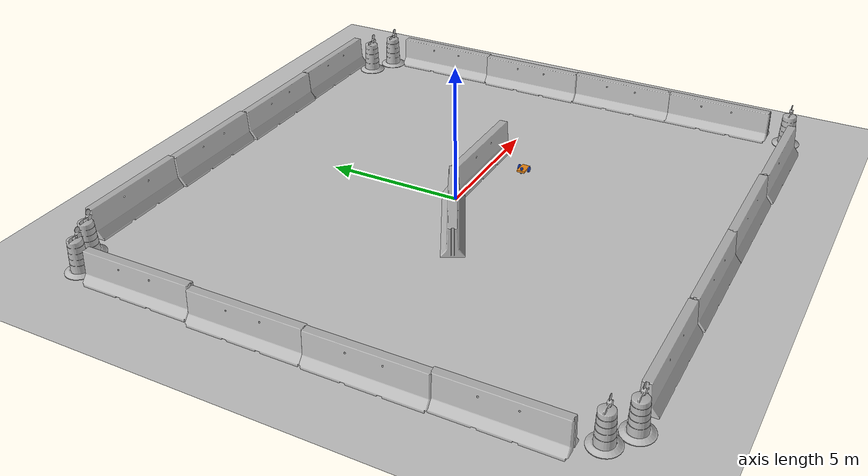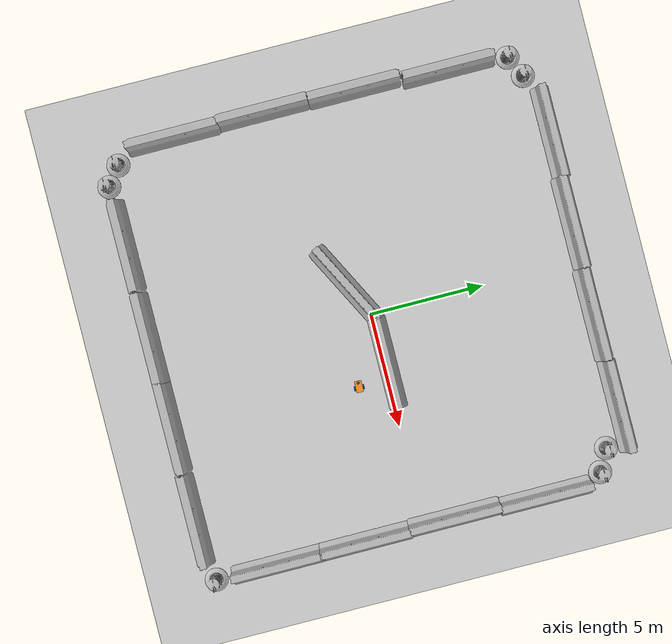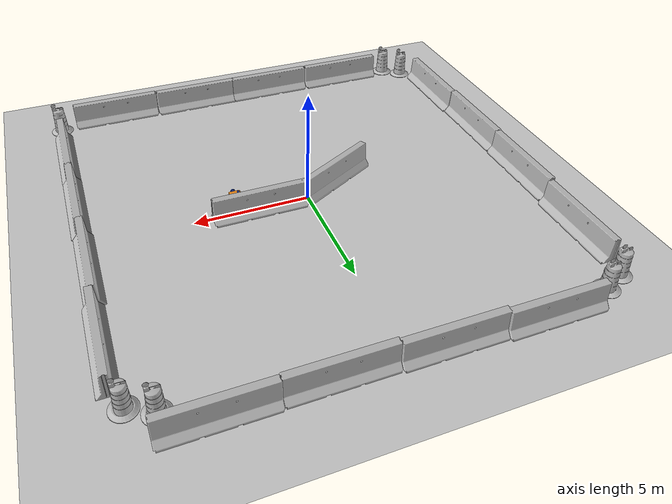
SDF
<sdf version="1.6">
 <world name="default">
  <light name="sun" type="directional">
   <pose>0 0 10 0 -0 0</pose>
   <diffuse>0.8 0.8 0.8 1</diffuse>
   <specular>0.2 0.2 0.2 1</specular>
   <attenuation>
    <range>1000</range>
    <constant>0.9</constant>
    <linear>0.01</linear>
    <quadratic>0.001</quadratic>
   </attenuation>
   <direction>-0.5 0.1 -0.9</direction>
  </light>
  <model name="ground_plane">
   <static>1</static>
   <link name="link">
    <collision name="collision">
     <geometry><plane><normal>0 0 1</normal><size>100 100</size></plane></geometry>
     <surface><friction><ode><mu>100</mu><mu2>50</mu2></ode></friction></surface>
    </collision>
    <visual name="visual">
     <cast_shadows>0</cast_shadows>
     <geometry><plane><normal>0 0 1</normal><size>100 100</size></plane></geometry>
     <material>
      <script><uri>file://media/materials/scripts/gazebo.material</uri><name>Gazebo/Grey</name></script>
     </material>
    </visual>
   </link>
  </model>
  <gravity>0 0 -9.8</gravity>
  <magnetic_field>6e-06 2.3e-05 -4.2e-05</magnetic_field>
  <atmosphere type="adiabatic"/>
  <physics name="default_physics" default="0" type="ode">
   <max_step_size>0.001</max_step_size>
   <real_time_factor>1</real_time_factor>
   <real_time_update_rate>1000</real_time_update_rate>
  </physics>
  <scene><ambient>0.4 0.4 0.4 1</ambient><background>0.7 0.7 0.7 1</background><shadows>1</shadows></scene>
  <spherical_coordinates>
   <surface_model>EARTH_WGS84</surface_model>
   <latitude_deg>0</latitude_deg>
   <longitude_deg>0</longitude_deg>
   <elevation>0</elevation>
   <heading_deg>0</heading_deg>
  </spherical_coordinates>
  <model name="jersey_barrier">
   <static>1</static>
   <link name="link">
    <visual name="visual">
     <geometry><mesh><uri>model://jersey_barrier/meshes/jersey_barrier.dae</uri></mesh></geometry>
    </visual>
    <collision name="upright">
     <pose>0 0 0.5715 0 -0 0</pose>
     <geometry><box><size>4.06542 0.3063 1.143</size></box></geometry>
    </collision>
    <collision name="base">
     <pose>0 0 0.032258 0 -0 0</pose>
     <geometry><box><size>4.06542 0.8107 0.064516</size></box></geometry>
    </collision>
    <collision name="base2">
     <pose>0 0 0.1 0 -0 0</pose>
     <geometry><box><size>4.06542 0.65 0.1</size></box></geometry>
    </collision>
    <collision name="base3">
     <pose>0 0 0.2 0 -0 0</pose>
     <geometry><box><size>4.06542 0.5 0.1</size></box></geometry>
    </collision>
    <collision name="left-angle">
     <pose>0 -0.224 0.2401 0.9 -0 0</pose>
     <geometry><box><size>4.06542 0.5 0.064516</size></box></geometry>
    </collision>
    <collision name="right-angle">
     <pose>0 0.224 0.2401 -0.9 0 0</pose>
     <geometry><box><size>4.06542 0.5 0.064516</size></box></geometry>
    </collision>
   </link>
   <pose>-5.65677 9.4608 0 0 -0 0</pose>
  </model>
  <model name="jersey_barrier_clone">
   <static>1</static>
   <link name="link">
    <visual name="visual">
     <geometry><mesh><uri>model://jersey_barrier/meshes/jersey_barrier.dae</uri></mesh></geometry>
    </visual>
    <collision name="upright">
     <pose>0 0 0.5715 0 -0 0</pose>
     <geometry><box><size>4.06542 0.3063 1.143</size></box></geometry>
    </collision>
    <collision name="base">
     <pose>0 0 0.032258 0 -0 0</pose>
     <geometry><box><size>4.06542 0.8107 0.064516</size></box></geometry>
    </collision>
    <collision name="base2">
     <pose>0 0 0.1 0 -0 0</pose>
     <geometry><box><size>4.06542 0.65 0.1</size></box></geometry>
    </collision>
    <collision name="base3">
     <pose>0 0 0.2 0 -0 0</pose>
     <geometry><box><size>4.06542 0.5 0.1</size></box></geometry>
    </collision>
    <collision name="left-angle">
     <pose>0 -0.224 0.2401 0.9 -0 0</pose>
     <geometry><box><size>4.06542 0.5 0.064516</size></box></geometry>
    </collision>
    <collision name="right-angle">
     <pose>0 0.224 0.2401 -0.9 0 0</pose>
     <geometry><box><size>4.06542 0.5 0.064516</size></box></geometry>
    </collision>
   </link>
   <pose>-1.65987 9.36075 0 0 -0 0</pose>
  </model>
  <model name="jersey_barrier_clone_0">
   <static>1</static>
   <link name="link">
    <visual name="visual">
     <geometry><mesh><uri>model://jersey_barrier/meshes/jersey_barrier.dae</uri></mesh></geometry>
    </visual>
    <collision name="upright">
     <pose>0 0 0.5715 0 -0 0</pose>
     <geometry><box><size>4.06542 0.3063 1.143</size></box></geometry>
    </collision>
    <collision name="base">
     <pose>0 0 0.032258 0 -0 0</pose>
     <geometry><box><size>4.06542 0.8107 0.064516</size></box></geometry>
    </collision>
    <collision name="base2">
     <pose>0 0 0.1 0 -0 0</pose>
     <geometry><box><size>4.06542 0.65 0.1</size></box></geometry>
    </collision>
    <collision name="base3">
     <pose>0 0 0.2 0 -0 0</pose>
     <geometry><box><size>4.06542 0.5 0.1</size></box></geometry>
    </collision>
    <collision name="left-angle">
     <pose>0 -0.224 0.2401 0.9 -0 0</pose>
     <geometry><box><size>4.06542 0.5 0.064516</size></box></geometry>
    </collision>
    <collision name="right-angle">
     <pose>0 0.224 0.2401 -0.9 0 0</pose>
     <geometry><box><size>4.06542 0.5 0.064516</size></box></geometry>
    </collision>
   </link>
   <pose>2.39773 9.29085 0 0 -0 0</pose>
  </model>
  <model name="jersey_barrier_clone_1">
   <static>1</static>
   <link name="link">
    <visual name="visual">
     <geometry><mesh><uri>model://jersey_barrier/meshes/jersey_barrier.dae</uri></mesh></geometry>
    </visual>
    <collision name="upright">
     <pose>0 0 0.5715 0 -0 0</pose>
     <geometry><box><size>4.06542 0.3063 1.143</size></box></geometry>
    </collision>
    <collision name="base">
     <pose>0 0 0.032258 0 -0 0</pose>
     <geometry><box><size>4.06542 0.8107 0.064516</size></box></geometry>
    </collision>
    <collision name="base2">
     <pose>0 0 0.1 0 -0 0</pose>
     <geometry><box><size>4.06542 0.65 0.1</size></box></geometry>
    </collision>
    <collision name="base3">
     <pose>0 0 0.2 0 -0 0</pose>
     <geometry><box><size>4.06542 0.5 0.1</size></box></geometry>
    </collision>
    <collision name="left-angle">
     <pose>0 -0.224 0.2401 0.9 -0 0</pose>
     <geometry><box><size>4.06542 0.5 0.064516</size></box></geometry>
    </collision>
    <collision name="right-angle">
     <pose>0 0.224 0.2401 -0.9 0 0</pose>
     <geometry><box><size>4.06542 0.5 0.064516</size></box></geometry>
    </collision>
   </link>
   <pose>6.45464 9.33993 0 0 -0 0</pose>
  </model>
  <model name="jersey_barrier_clone_3">
   <static>1</static>
   <link name="link">
    <visual name="visual">
     <geometry><mesh><uri>model://jersey_barrier/meshes/jersey_barrier.dae</uri></mesh></geometry>
    </visual>
    <collision name="upright">
     <pose>0 0 0.5715 0 -0 0</pose>
     <geometry><box><size>4.06542 0.3063 1.143</size></box></geometry>
    </collision>
    <collision name="base">
     <pose>0 0 0.032258 0 -0 0</pose>
     <geometry><box><size>4.06542 0.8107 0.064516</size></box></geometry>
    </collision>
    <collision name="base2">
     <pose>0 0 0.1 0 -0 0</pose>
     <geometry><box><size>4.06542 0.65 0.1</size></box></geometry>
    </collision>
    <collision name="base3">
     <pose>0 0 0.2 0 -0 0</pose>
     <geometry><box><size>4.06542 0.5 0.1</size></box></geometry>
    </collision>
    <collision name="left-angle">
     <pose>0 -0.224 0.2401 0.9 -0 0</pose>
     <geometry><box><size>4.06542 0.5 0.064516</size></box></geometry>
    </collision>
    <collision name="right-angle">
     <pose>0 0.224 0.2401 -0.9 0 0</pose>
     <geometry><box><size>4.06542 0.5 0.064516</size></box></geometry>
    </collision>
   </link>
   <pose>9.44656 5.35522 0 0 0 -1.56865</pose>
  </model>
  <model name="jersey_barrier_clone_3_clone">
   <static>1</static>
   <link name="link">
    <visual name="visual">
     <geometry><mesh><uri>model://jersey_barrier/meshes/jersey_barrier.dae</uri></mesh></geometry>
    </visual>
    <collision name="upright">
     <pose>0 0 0.5715 0 -0 0</pose>
     <geometry><box><size>4.06542 0.3063 1.143</size></box></geometry>
    </collision>
    <collision name="base">
     <pose>0 0 0.032258 0 -0 0</pose>
     <geometry><box><size>4.06542 0.8107 0.064516</size></box></geometry>
    </collision>
    <collision name="base2">
     <pose>0 0 0.1 0 -0 0</pose>
     <geometry><box><size>4.06542 0.65 0.1</size></box></geometry>
    </collision>
    <collision name="base3">
     <pose>0 0 0.2 0 -0 0</pose>
     <geometry><box><size>4.06542 0.5 0.1</size></box></geometry>
    </collision>
    <collision name="left-angle">
     <pose>0 -0.224 0.2401 0.9 -0 0</pose>
     <geometry><box><size>4.06542 0.5 0.064516</size></box></geometry>
    </collision>
    <collision name="right-angle">
     <pose>0 0.224 0.2401 -0.9 0 0</pose>
     <geometry><box><size>4.06542 0.5 0.064516</size></box></geometry>
    </collision>
   </link>
   <pose>9.3727 1.33119 0 0 0 -1.56865</pose>
  </model>
  <model name="jersey_barrier_clone_3_clone_0">
   <static>1</static>
   <link name="link">
    <visual name="visual">
     <geometry><mesh><uri>model://jersey_barrier/meshes/jersey_barrier.dae</uri></mesh></geometry>
    </visual>
    <collision name="upright">
     <pose>0 0 0.5715 0 -0 0</pose>
     <geometry><box><size>4.06542 0.3063 1.143</size></box></geometry>
    </collision>
    <collision name="base">
     <pose>0 0 0.032258 0 -0 0</pose>
     <geometry><box><size>4.06542 0.8107 0.064516</size></box></geometry>
    </collision>
    <collision name="base2">
     <pose>0 0 0.1 0 -0 0</pose>
     <geometry><box><size>4.06542 0.65 0.1</size></box></geometry>
    </collision>
    <collision name="base3">
     <pose>0 0 0.2 0 -0 0</pose>
     <geometry><box><size>4.06542 0.5 0.1</size></box></geometry>
    </collision>
    <collision name="left-angle">
     <pose>0 -0.224 0.2401 0.9 -0 0</pose>
     <geometry><box><size>4.06542 0.5 0.064516</size></box></geometry>
    </collision>
    <collision name="right-angle">
     <pose>0 0.224 0.2401 -0.9 0 0</pose>
     <geometry><box><size>4.06542 0.5 0.064516</size></box></geometry>
    </collision>
   </link>
   <pose>9.4315 -2.6268 0 0 0 -1.56865</pose>
  </model>
  <model name="jersey_barrier_clone_3_clone_1">
   <static>1</static>
   <link name="link">
    <visual name="visual">
     <geometry><mesh><uri>model://jersey_barrier/meshes/jersey_barrier.dae</uri></mesh></geometry>
    </visual>
    <collision name="upright">
     <pose>0 0 0.5715 0 -0 0</pose>
     <geometry><box><size>4.06542 0.3063 1.143</size></box></geometry>
    </collision>
    <collision name="base">
     <pose>0 0 0.032258 0 -0 0</pose>
     <geometry><box><size>4.06542 0.8107 0.064516</size></box></geometry>
    </collision>
    <collision name="base2">
     <pose>0 0 0.1 0 -0 0</pose>
     <geometry><box><size>4.06542 0.65 0.1</size></box></geometry>
    </collision>
    <collision name="base3">
     <pose>0 0 0.2 0 -0 0</pose>
     <geometry><box><size>4.06542 0.5 0.1</size></box></geometry>
    </collision>
    <collision name="left-angle">
     <pose>0 -0.224 0.2401 0.9 -0 0</pose>
     <geometry><box><size>4.06542 0.5 0.064516</size></box></geometry>
    </collision>
    <collision name="right-angle">
     <pose>0 0.224 0.2401 -0.9 0 0</pose>
     <geometry><box><size>4.06542 0.5 0.064516</size></box></geometry>
    </collision>
   </link>
   <pose>9.44969 -6.53485 0 0 0 -1.56865</pose>
  </model>
  <model name="jersey_barrier_clone_2_clone">
   <static>1</static>
   <link name="link">
    <visual name="visual">
     <geometry><mesh><uri>model://jersey_barrier/meshes/jersey_barrier.dae</uri></mesh></geometry>
    </visual>
    <collision name="upright">
     <pose>0 0 0.5715 0 -0 0</pose>
     <geometry><box><size>4.06542 0.3063 1.143</size></box></geometry>
    </collision>
    <collision name="base">
     <pose>0 0 0.032258 0 -0 0</pose>
     <geometry><box><size>4.06542 0.8107 0.064516</size></box></geometry>
    </collision>
    <collision name="base2">
     <pose>0 0 0.1 0 -0 0</pose>
     <geometry><box><size>4.06542 0.65 0.1</size></box></geometry>
    </collision>
    <collision name="base3">
     <pose>0 0 0.2 0 -0 0</pose>
     <geometry><box><size>4.06542 0.5 0.1</size></box></geometry>
    </collision>
    <collision name="left-angle">
     <pose>0 -0.224 0.2401 0.9 -0 0</pose>
     <geometry><box><size>4.06542 0.5 0.064516</size></box></geometry>
    </collision>
    <collision name="right-angle">
     <pose>0 0.224 0.2401 -0.9 0 0</pose>
     <geometry><box><size>4.06542 0.5 0.064516</size></box></geometry>
    </collision>
   </link>
   <pose>6.70657 -9.54347 0 0 -0 0</pose>
  </model>
  <model name="jersey_barrier_clone_2_clone_0">
   <static>1</static>
   <link name="link">
    <visual name="visual">
     <geometry><mesh><uri>model://jersey_barrier/meshes/jersey_barrier.dae</uri></mesh></geometry>
    </visual>
    <collision name="upright">
     <pose>0 0 0.5715 0 -0 0</pose>
     <geometry><box><size>4.06542 0.3063 1.143</size></box></geometry>
    </collision>
    <collision name="base">
     <pose>0 0 0.032258 0 -0 0</pose>
     <geometry><box><size>4.06542 0.8107 0.064516</size></box></geometry>
    </collision>
    <collision name="base2">
     <pose>0 0 0.1 0 -0 0</pose>
     <geometry><box><size>4.06542 0.65 0.1</size></box></geometry>
    </collision>
    <collision name="base3">
     <pose>0 0 0.2 0 -0 0</pose>
     <geometry><box><size>4.06542 0.5 0.1</size></box></geometry>
    </collision>
    <collision name="left-angle">
     <pose>0 -0.224 0.2401 0.9 -0 0</pose>
     <geometry><box><size>4.06542 0.5 0.064516</size></box></geometry>
    </collision>
    <collision name="right-angle">
     <pose>0 0.224 0.2401 -0.9 0 0</pose>
     <geometry><box><size>4.06542 0.5 0.064516</size></box></geometry>
    </collision>
   </link>
   <pose>2.59616 -9.50928 0 0 -0 0</pose>
  </model>
  <model name="jersey_barrier_clone_2_clone_1">
   <static>1</static>
   <link name="link">
    <visual name="visual">
     <geometry><mesh><uri>model://jersey_barrier/meshes/jersey_barrier.dae</uri></mesh></geometry>
    </visual>
    <collision name="upright">
     <pose>0 0 0.5715 0 -0 0</pose>
     <geometry><box><size>4.06542 0.3063 1.143</size></box></geometry>
    </collision>
    <collision name="base">
     <pose>0 0 0.032258 0 -0 0</pose>
     <geometry><box><size>4.06542 0.8107 0.064516</size></box></geometry>
    </collision>
    <collision name="base2">
     <pose>0 0 0.1 0 -0 0</pose>
     <geometry><box><size>4.06542 0.65 0.1</size></box></geometry>
    </collision>
    <collision name="base3">
     <pose>0 0 0.2 0 -0 0</pose>
     <geometry><box><size>4.06542 0.5 0.1</size></box></geometry>
    </collision>
    <collision name="left-angle">
     <pose>0 -0.224 0.2401 0.9 -0 0</pose>
     <geometry><box><size>4.06542 0.5 0.064516</size></box></geometry>
    </collision>
    <collision name="right-angle">
     <pose>0 0.224 0.2401 -0.9 0 0</pose>
     <geometry><box><size>4.06542 0.5 0.064516</size></box></geometry>
    </collision>
   </link>
   <pose>-1.33414 -9.50852 0 0 -0 0</pose>
  </model>
  <model name="jersey_barrier_clone_2_clone_2">
   <static>1</static>
   <link name="link">
    <visual name="visual">
     <geometry><mesh><uri>model://jersey_barrier/meshes/jersey_barrier.dae</uri></mesh></geometry>
    </visual>
    <collision name="upright">
     <pose>0 0 0.5715 0 -0 0</pose>
     <geometry><box><size>4.06542 0.3063 1.143</size></box></geometry>
    </collision>
    <collision name="base">
     <pose>0 0 0.032258 0 -0 0</pose>
     <geometry><box><size>4.06542 0.8107 0.064516</size></box></geometry>
    </collision>
    <collision name="base2">
     <pose>0 0 0.1 0 -0 0</pose>
     <geometry><box><size>4.06542 0.65 0.1</size></box></geometry>
    </collision>
    <collision name="base3">
     <pose>0 0 0.2 0 -0 0</pose>
     <geometry><box><size>4.06542 0.5 0.1</size></box></geometry>
    </collision>
    <collision name="left-angle">
     <pose>0 -0.224 0.2401 0.9 -0 0</pose>
     <geometry><box><size>4.06542 0.5 0.064516</size></box></geometry>
    </collision>
    <collision name="right-angle">
     <pose>0 0.224 0.2401 -0.9 0 0</pose>
     <geometry><box><size>4.06542 0.5 0.064516</size></box></geometry>
    </collision>
   </link>
   <pose>-5.44605 -9.49634 0 0 -0 0</pose>
  </model>
  <model name="jersey_barrier_clone_3_clone_1_clone">
   <static>1</static>
   <link name="link">
    <visual name="visual">
     <geometry><mesh><uri>model://jersey_barrier/meshes/jersey_barrier.dae</uri></mesh></geometry>
    </visual>
    <collision name="upright">
     <pose>0 0 0.5715 0 -0 0</pose>
     <geometry><box><size>4.06542 0.3063 1.143</size></box></geometry>
    </collision>
    <collision name="base">
     <pose>0 0 0.032258 0 -0 0</pose>
     <geometry><box><size>4.06542 0.8107 0.064516</size></box></geometry>
    </collision>
    <collision name="base2">
     <pose>0 0 0.1 0 -0 0</pose>
     <geometry><box><size>4.06542 0.65 0.1</size></box></geometry>
    </collision>
    <collision name="base3">
     <pose>0 0 0.2 0 -0 0</pose>
     <geometry><box><size>4.06542 0.5 0.1</size></box></geometry>
    </collision>
    <collision name="left-angle">
     <pose>0 -0.224 0.2401 0.9 -0 0</pose>
     <geometry><box><size>4.06542 0.5 0.064516</size></box></geometry>
    </collision>
    <collision name="right-angle">
     <pose>0 0.224 0.2401 -0.9 0 0</pose>
     <geometry><box><size>4.06542 0.5 0.064516</size></box></geometry>
    </collision>
   </link>
   <pose>-9.54289 -6.33149 0 0 0 -1.56865</pose>
  </model>
  <model name="jersey_barrier_clone_3_clone_1_clone_0">
   <static>1</static>
   <link name="link">
    <visual name="visual">
     <geometry><mesh><uri>model://jersey_barrier/meshes/jersey_barrier.dae</uri></mesh></geometry>
    </visual>
    <collision name="upright">
     <pose>0 0 0.5715 0 -0 0</pose>
     <geometry><box><size>4.06542 0.3063 1.143</size></box></geometry>
    </collision>
    <collision name="base">
     <pose>0 0 0.032258 0 -0 0</pose>
     <geometry><box><size>4.06542 0.8107 0.064516</size></box></geometry>
    </collision>
    <collision name="base2">
     <pose>0 0 0.1 0 -0 0</pose>
     <geometry><box><size>4.06542 0.65 0.1</size></box></geometry>
    </collision>
    <collision name="base3">
     <pose>0 0 0.2 0 -0 0</pose>
     <geometry><box><size>4.06542 0.5 0.1</size></box></geometry>
    </collision>
    <collision name="left-angle">
     <pose>0 -0.224 0.2401 0.9 -0 0</pose>
     <geometry><box><size>4.06542 0.5 0.064516</size></box></geometry>
    </collision>
    <collision name="right-angle">
     <pose>0 0.224 0.2401 -0.9 0 0</pose>
     <geometry><box><size>4.06542 0.5 0.064516</size></box></geometry>
    </collision>
   </link>
   <pose>-9.6221 -2.35336 0 0 0 -1.56865</pose>
  </model>
  <model name="jersey_barrier_clone_3_clone_1_clone_1">
   <static>1</static>
   <link name="link">
    <visual name="visual">
     <geometry><mesh><uri>model://jersey_barrier/meshes/jersey_barrier.dae</uri></mesh></geometry>
    </visual>
    <collision name="upright">
     <pose>0 0 0.5715 0 -0 0</pose>
     <geometry><box><size>4.06542 0.3063 1.143</size></box></geometry>
    </collision>
    <collision name="base">
     <pose>0 0 0.032258 0 -0 0</pose>
     <geometry><box><size>4.06542 0.8107 0.064516</size></box></geometry>
    </collision>
    <collision name="base2">
     <pose>0 0 0.1 0 -0 0</pose>
     <geometry><box><size>4.06542 0.65 0.1</size></box></geometry>
    </collision>
    <collision name="base3">
     <pose>0 0 0.2 0 -0 0</pose>
     <geometry><box><size>4.06542 0.5 0.1</size></box></geometry>
    </collision>
    <collision name="left-angle">
     <pose>0 -0.224 0.2401 0.9 -0 0</pose>
     <geometry><box><size>4.06542 0.5 0.064516</size></box></geometry>
    </collision>
    <collision name="right-angle">
     <pose>0 0.224 0.2401 -0.9 0 0</pose>
     <geometry><box><size>4.06542 0.5 0.064516</size></box></geometry>
    </collision>
   </link>
   <pose>-9.58952 1.69745 0 0 0 -1.56865</pose>
  </model>
  <model name="jersey_barrier_clone_3_clone_1_clone_2">
   <static>1</static>
   <link name="link">
    <visual name="visual">
     <geometry><mesh><uri>model://jersey_barrier/meshes/jersey_barrier.dae</uri></mesh></geometry>
    </visual>
    <collision name="upright">
     <pose>0 0 0.5715 0 -0 0</pose>
     <geometry><box><size>4.06542 0.3063 1.143</size></box></geometry>
    </collision>
    <collision name="base">
     <pose>0 0 0.032258 0 -0 0</pose>
     <geometry><box><size>4.06542 0.8107 0.064516</size></box></geometry>
    </collision>
    <collision name="base2">
     <pose>0 0 0.1 0 -0 0</pose>
     <geometry><box><size>4.06542 0.65 0.1</size></box></geometry>
    </collision>
    <collision name="base3">
     <pose>0 0 0.2 0 -0 0</pose>
     <geometry><box><size>4.06542 0.5 0.1</size></box></geometry>
    </collision>
    <collision name="left-angle">
     <pose>0 -0.224 0.2401 0.9 -0 0</pose>
     <geometry><box><size>4.06542 0.5 0.064516</size></box></geometry>
    </collision>
    <collision name="right-angle">
     <pose>0 0.224 0.2401 -0.9 0 0</pose>
     <geometry><box><size>4.06542 0.5 0.064516</size></box></geometry>
    </collision>
   </link>
   <pose>-9.44715 5.83721 0 0 0 -1.56865</pose>
  </model>
  <model name="Construction Barrel">
   <link name="link">
    <inertial>
     <pose>0 0 0.4 0 -0 0</pose>
     <mass>500</mass>
     <inertia><ixx>51.2096</ixx><iyy>51.2096</iyy><izz>25</izz><ixy>0</ixy><ixz>0</ixz><iyz>0</iyz></inertia>
    </inertial>
    <collision name="collision">
     <geometry><mesh><uri>model://construction_barrel/meshes/construction_barrel.dae</uri></mesh></geometry>
    </collision>
    <visual name="visual">
     <geometry><mesh><uri>model://construction_barrel/meshes/construction_barrel.dae</uri></mesh></geometry>
    </visual>
   </link>
   <pose>9.07429 7.91776 -3e-06 -4e-06 6e-06 -0.015843</pose>
  </model>
  <model name="Construction Barrel_0">
   <link name="link">
    <inertial>
     <pose>0 0 0.4 0 -0 0</pose>
     <mass>500</mass>
     <inertia><ixx>51.2096</ixx><iyy>51.2096</iyy><izz>25</izz><ixy>0</ixy><ixz>0</ixz><iyz>0</iyz></inertia>
    </inertial>
    <collision name="collision">
     <geometry><mesh><uri>model://construction_barrel/meshes/construction_barrel.dae</uri></mesh></geometry>
    </collision>
    <visual name="visual">
     <geometry><mesh><uri>model://construction_barrel/meshes/construction_barrel.dae</uri></mesh></geometry>
    </visual>
   </link>
   <pose>8.12824 8.41632 0 0 0 -6.8e-05</pose>
  </model>
  <model name="Construction Barrel_1">
   <link name="link">
    <inertial>
     <pose>0 0 0.4 0 -0 0</pose>
     <mass>500</mass>
     <inertia><ixx>51.2096</ixx><iyy>51.2096</iyy><izz>25</izz><ixy>0</ixy><ixz>0</ixz><iyz>0</iyz></inertia>
    </inertial>
    <collision name="collision">
     <geometry><mesh><uri>model://construction_barrel/meshes/construction_barrel.dae</uri></mesh></geometry>
    </collision>
    <visual name="visual">
     <geometry><mesh><uri>model://construction_barrel/meshes/construction_barrel.dae</uri></mesh></geometry>
    </visual>
   </link>
   <pose>-9.27273 8.48385 1e-06 3e-06 2e-06 -8e-05</pose>
  </model>
  <model name="Construction Barrel_2">
   <link name="link">
    <inertial>
     <pose>0 0 0.4 0 -0 0</pose>
     <mass>500</mass>
     <inertia><ixx>51.2096</ixx><iyy>51.2096</iyy><izz>25</izz><ixy>0</ixy><ixz>0</ixz><iyz>0</iyz></inertia>
    </inertial>
    <collision name="collision">
     <geometry><mesh><uri>model://construction_barrel/meshes/construction_barrel.dae</uri></mesh></geometry>
    </collision>
    <visual name="visual">
     <geometry><mesh><uri>model://construction_barrel/meshes/construction_barrel.dae</uri></mesh></geometry>
    </visual>
   </link>
   <pose>-8.34366 8.93851 -1e-06 1e-06 -9e-06 -4.3e-05</pose>
  </model>
  <model name="Construction Barrel_3">
   <link name="link">
    <inertial>
     <pose>0 0 0.4 0 -0 0</pose>
     <mass>500</mass>
     <inertia><ixx>51.2096</ixx><iyy>51.2096</iyy><izz>25</izz><ixy>0</ixy><ixz>0</ixz><iyz>0</iyz></inertia>
    </inertial>
    <collision name="collision">
     <geometry><mesh><uri>model://construction_barrel/meshes/construction_barrel.dae</uri></mesh></geometry>
    </collision>
    <visual name="visual">
     <geometry><mesh><uri>model://construction_barrel/meshes/construction_barrel.dae</uri></mesh></geometry>
    </visual>
   </link>
   <pose>9.45355 -9.29436 -1e-06 3e-06 7e-06 -8.3e-05</pose>
  </model>
  <model name="Construction Barrel_4">
   <link name="link">
    <inertial>
     <pose>0 0 0.4 0 -0 0</pose>
     <mass>500</mass>
     <inertia><ixx>51.2096</ixx><iyy>51.2096</iyy><izz>25</izz><ixy>0</ixy><ixz>0</ixz><iyz>0</iyz></inertia>
    </inertial>
    <collision name="collision">
     <geometry><mesh><uri>model://construction_barrel/meshes/construction_barrel.dae</uri></mesh></geometry>
    </collision>
    <visual name="visual">
     <geometry><mesh><uri>model://construction_barrel/meshes/construction_barrel.dae</uri></mesh></geometry>
    </visual>
   </link>
   <pose>-8.13322 -9.57178 -0 0 -0 -0.000521</pose>
  </model>
  <model name="Construction Barrel_5">
   <link name="link">
    <inertial>
     <pose>0 0 0.4 0 -0 0</pose>
     <mass>500</mass>
     <inertia><ixx>51.2096</ixx><iyy>51.2096</iyy><izz>25</izz><ixy>0</ixy><ixz>0</ixz><iyz>0</iyz></inertia>
    </inertial>
    <collision name="collision">
     <geometry><mesh><uri>model://construction_barrel/meshes/construction_barrel.dae</uri></mesh></geometry>
    </collision>
    <visual name="visual">
     <geometry><mesh><uri>model://construction_barrel/meshes/construction_barrel.dae</uri></mesh></geometry>
    </visual>
   </link>
   <pose>-8.93856 -8.96011 -2e-06 7e-06 -2e-06 -0.00043</pose>
  </model>
  <model name="jersey_barrier_0_clone_0">
   <static>1</static>
   <link name="link">
    <visual name="visual">
     <geometry><mesh><uri>model://jersey_barrier/meshes/jersey_barrier.dae</uri></mesh></geometry>
    </visual>
    <collision name="upright">
     <pose>0 0 0.5715 0 -0 0</pose>
     <geometry><box><size>4.06542 0.3063 1.143</size></box></geometry>
    </collision>
    <collision name="base">
     <pose>0 0 0.032258 0 -0 0</pose>
     <geometry><box><size>4.06542 0.8107 0.064516</size></box></geometry>
    </collision>
    <collision name="base2">
     <pose>0 0 0.1 0 -0 0</pose>
     <geometry><box><size>4.06542 0.65 0.1</size></box></geometry>
    </collision>
    <collision name="base3">
     <pose>0 0 0.2 0 -0 0</pose>
     <geometry><box><size>4.06542 0.5 0.1</size></box></geometry>
    </collision>
    <collision name="left-angle">
     <pose>0 -0.224 0.2401 0.9 -0 0</pose>
     <geometry><box><size>4.06542 0.5 0.064516</size></box></geometry>
    </collision>
    <collision name="right-angle">
     <pose>0 0.224 0.2401 -0.9 0 0</pose>
     <geometry><box><size>4.06542 0.5 0.064516</size></box></geometry>
    </collision>
   </link>
   <pose>-1.49755 -0.680917 0 0 -0 0.47929</pose>
  </model>
  <model name="jersey_barrier_0_clone_1_clone">
   <static>1</static>
   <link name="link">
    <visual name="visual">
     <geometry><mesh><uri>model://jersey_barrier/meshes/jersey_barrier.dae</uri></mesh></geometry>
    </visual>
    <collision name="upright">
     <pose>0 0 0.5715 0 -0 0</pose>
     <geometry><box><size>4.06542 0.3063 1.143</size></box></geometry>
    </collision>
    <collision name="base">
     <pose>0 0 0.032258 0 -0 0</pose>
     <geometry><box><size>4.06542 0.8107 0.064516</size></box></geometry>
    </collision>
    <collision name="base2">
     <pose>0 0 0.1 0 -0 0</pose>
     <geometry><box><size>4.06542 0.65 0.1</size></box></geometry>
    </collision>
    <collision name="base3">
     <pose>0 0 0.2 0 -0 0</pose>
     <geometry><box><size>4.06542 0.5 0.1</size></box></geometry>
    </collision>
    <collision name="left-angle">
     <pose>0 -0.224 0.2401 0.9 -0 0</pose>
     <geometry><box><size>4.06542 0.5 0.064516</size></box></geometry>
    </collision>
    <collision name="right-angle">
     <pose>0 0.224 0.2401 -0.9 0 0</pose>
     <geometry><box><size>4.06542 0.5 0.064516</size></box></geometry>
    </collision>
   </link>
   <pose>2.19607 0.183808 0 0 -0 0</pose>
  </model>
  <audio><device>default</device></audio>
  <model name="m2wr">
   <link name="link_chassis">
    <inertial>
     <pose>0.025 0 0.091667 0 -0 0</pose>
     <mass>6</mass>
     <inertia>
      <ixx>0.0430833</ixx>
      <ixy>0</ixy>
      <ixz>0.00625</ixz>
      <iyy>0.1285</iyy>
      <iyz>0</iyz>
      <izz>0.126208</izz>
     </inertia>
    </inertial>
    <collision name="link_chassis_fixed_joint_lump__collision_chassis_collision">
     <geometry><box><size>0.5 0.3 0.07</size></box></geometry>
    </collision>
    <collision name="link_chassis_fixed_joint_lump__caster_front_collision_collision_1">
     <pose>0.35 0 -0.05 0 -0 0</pose>
     <geometry><sphere><radius>0.05</radius></sphere></geometry>
    </collision>
    <collision name="link_chassis_fixed_joint_lump__sensor_laser_collision_2">
     <pose>0.15 0 0.05 0 -0 0</pose>
     <geometry><cylinder><length>0.1</length><radius>0.05</radius></cylinder></geometry>
    </collision>
    <visual name="link_chassis_visual">
     <geometry><box><size>0.5 0.3 0.07</size></box></geometry>
     <material>
      <script><name>Gazebo/Orange</name><uri>file://media/materials/scripts/gazebo.material</uri></script>
     </material>
    </visual>
    <visual name="link_chassis_fixed_joint_lump__caster_front_visual_visual_1">
     <pose>0.2 0 -0.05 0 -0 0</pose>
     <geometry><sphere><radius>0.05</radius></sphere></geometry>
    </visual>
    <visual name="link_chassis_fixed_joint_lump__sensor_laser_visual_2">
     <pose>0.15 0 0.05 0 -0 0</pose>
     <geometry><cylinder><length>0.1</length><radius>0.05</radius></cylinder></geometry>
     <material>
      <script><name>Gazebo/Blue</name><uri>file://media/materials/scripts/gazebo.material</uri></script>
     </material>
    </visual>
    <sensor name="head_hokuyo_sensor" type="ray">
     <visualize>0</visualize>
     <update_rate>20</update_rate>
     <ray>
      <scan>
       <horizontal>
        <samples>720</samples>
        <resolution>1</resolution>
        <min_angle>-1.5708</min_angle>
        <max_angle>1.5708</max_angle>
       </horizontal>
       <vertical><samples>1</samples><min_angle>0</min_angle><max_angle>0</max_angle></vertical>
      </scan>
      <range><min>0.1</min><max>10</max><resolution>0.01</resolution></range>
      <noise><type>gaussian</type><mean>0</mean><stddev>0.01</stddev></noise>
     </ray>
     <plugin name="gazebo_ros_head_hokuyo_controller" filename="libgazebo_ros_laser.so">
      <topicName>/m2wr/laser/scan</topicName>
      <frameName>sensor_laser</frameName>
      <robotNamespace>/</robotNamespace>
     </plugin>
     <pose>0.15 0 0.05 0 -0 0</pose>
    </sensor>
   </link>
   <link name="link_left_wheel">
    <pose>-0.05 -0.2 0 0 -0 0</pose>
    <inertial>
     <pose>0 0 0 -0 1.5707 1.5707</pose>
     <mass>0.2</mass>
     <inertia>
      <ixx>0.000526667</ixx>
      <ixy>0</ixy>
      <ixz>0</ixz>
      <iyy>0.000526667</iyy>
      <iyz>0</iyz>
      <izz>0.001</izz>
     </inertia>
    </inertial>
    <collision name="link_left_wheel_fixed_joint_lump__link_right_wheel_collision_collision">
     <pose>0 0 0 3.14159 1.57079 -1.57089</pose>
     <geometry><cylinder><length>0.04</length><radius>0.1</radius></cylinder></geometry>
    </collision>
    <visual name="link_left_wheel_visual_visual">
     <pose>0 0 0 3.14159 1.57079 -1.57089</pose>
     <geometry><cylinder><length>0.04</length><radius>0.1</radius></cylinder></geometry>
     <material>
      <script><name>Gazebo/Blue</name><uri>file://media/materials/scripts/gazebo.material</uri></script>
     </material>
    </visual>
   </link>
   <joint name="joint_left_wheel" type="revolute">
    <child>link_left_wheel</child>
    <parent>link_chassis</parent>
    <axis>
     <xyz>0 1 0</xyz>
     <limit><lower>-1e+16</lower><upper>1e+16</upper></limit>
     <dynamics><spring_reference>0</spring_reference><spring_stiffness>0</spring_stiffness></dynamics>
     <use_parent_model_frame>1</use_parent_model_frame>
    </axis>
   </joint>
   <link name="link_right_wheel">
    <pose>-0.05 0.2 0 0 -0 0</pose>
    <inertial>
     <pose>0 0 0 -0 1.5707 1.5707</pose>
     <mass>0.2</mass>
     <inertia>
      <ixx>0.000526667</ixx>
      <ixy>0</ixy>
      <ixz>0</ixz>
      <iyy>0.000526667</iyy>
      <iyz>0</iyz>
      <izz>0.001</izz>
     </inertia>
    </inertial>
    <collision name="link_right_wheel_collision_collision">
     <pose>0 0 0 3.14159 1.57079 -1.57089</pose>
     <geometry><cylinder><length>0.04</length><radius>0.1</radius></cylinder></geometry>
    </collision>
    <visual name="link_right_wheel_visual_visual">
     <pose>0 0 0 3.14159 1.57079 -1.57089</pose>
     <geometry><cylinder><length>0.04</length><radius>0.1</radius></cylinder></geometry>
     <material>
      <script><name>Gazebo/Blue</name><uri>file://media/materials/scripts/gazebo.material</uri></script>
     </material>
    </visual>
   </link>
   <joint name="joint_right_wheel" type="revolute">
    <child>link_right_wheel</child>
    <parent>link_chassis</parent>
    <axis>
     <xyz>0 1 0</xyz>
     <limit><lower>-1e+16</lower><upper>1e+16</upper></limit>
     <dynamics><spring_reference>0</spring_reference><spring_stiffness>0</spring_stiffness></dynamics>
     <use_parent_model_frame>1</use_parent_model_frame>
    </axis>
   </joint>
   <static>0</static>
   <plugin name="differential_drive_controller" filename="libgazebo_ros_diff_drive.so">
    <alwaysOn>1</alwaysOn>
    <updateRate>20</updateRate>
    <leftJoint>joint_left_wheel</leftJoint>
    <rightJoint>joint_right_wheel</rightJoint>
    <wheelSeparation>0.4</wheelSeparation>
    <wheelDiameter>0.2</wheelDiameter>
    <torque>0.1</torque>
    <commandTopic>cmd_vel</commandTopic>
    <odometryTopic>odom</odometryTopic>
    <odometryFrame>odom</odometryFrame>
    <robotBaseFrame>link_chassis</robotBaseFrame>
    <robotNamespace>/</robotNamespace>
   </plugin>
   <pose>2.9 -1.26151 0.099999 -1e-06 8e-06 3.12159</pose>
  </model>
 </world>
</sdf>
